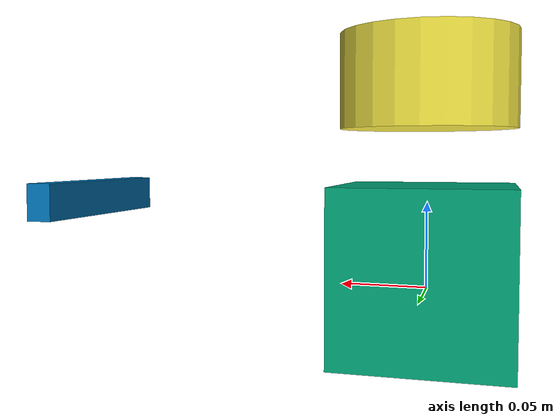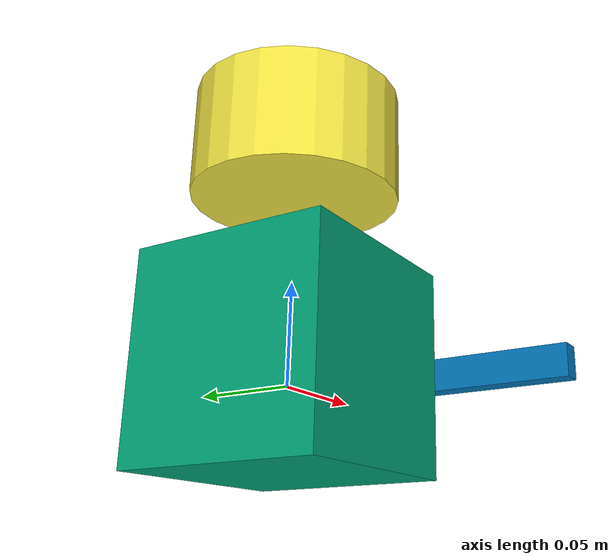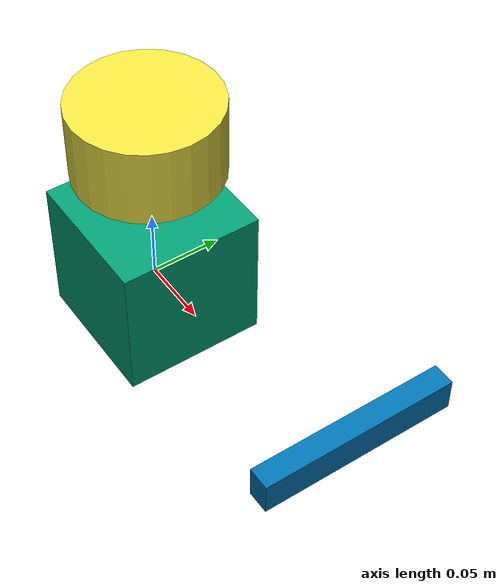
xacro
<?xml version="1.0"?>
<robot name="minimal_tf"
  xmlns:xacro="http://ros.org/wiki/xacro">

  <!-- Define robot constants -->
  <xacro:property name="base_width" value="0.05"/>
  <xacro:property name="base_length" value="0.05"/>
  <xacro:property name="base_height" value="0.05"/>

  <!-- Define some commonly used intertial properties  -->
  <xacro:macro name="box_inertia" params="m w h d">
    <inertial>
      <origin xyz="0 0 0" rpy="${pi/2} 0 ${pi/2}"/>
      <mass value="${m}"/>
      <inertia ixx="${(m/12) * (h*h + d*d)}" ixy="0.0" ixz="0.0" iyy="${(m/12) * (w*w + d*d)}" iyz="0.0" izz="${(m/12) * (w*w + h*h)}"/>
    </inertial>
  </xacro:macro>

  <!-- Robot Base -->
  <link name="base_link">
    <visual>
      <geometry>
        <box size="${base_length} ${base_width} ${base_height}"/>
      </geometry>
      <material name="Cyan">
        <color rgba="0 1.0 1.0 1.0"/>
      </material>
    </visual>

    <collision>
      <geometry>
        <box size="${base_length} ${base_width} ${base_height}"/>
      </geometry>
    </collision>
  </link>

  <!-- Robot Footprint -->
  <link name="base_footprint">
    <xacro:box_inertia m="15" w="${base_width}" d="${base_length}" h="${base_height}"/>
  </link>

  <joint name="base_joint" type="fixed">
    <parent link="base_link"/>
    <child link="base_footprint"/>
    <origin xyz="0.0 0.0 0.0" rpy="0 0 0"/>
  </joint>

  <link name="imu_link">
    <visual>
      <geometry>
        <box size="0.1 0.1 0.1"/>
      </geometry>
    </visual>

    <collision>
      <geometry>
        <box size="0.1 0.1 0.1"/>
      </geometry>
    </collision>

    <xacro:box_inertia m="0.1" w="0.1" d="0.1" h="0.1"/>
  </link>

  <joint name="imu_joint" type="fixed">
    <parent link="base_link"/>
    <child link="imu_link"/>
    <origin xyz="0 0 0.01"/>
  </joint>

  <link name="lidar_link">
    <inertial>
      <origin xyz="0 0 0" rpy="0 0 0"/>
      <mass value="0.125"/>
      <inertia ixx="0.001" ixy="0" ixz="0" iyy="0.001" iyz="0" izz="0.001" />
    </inertial>

    <collision>
      <origin xyz="0 0 0" rpy="0 0 0"/>
      <geometry>
        <cylinder radius="0.0508" length="0.055"/>
      </geometry>
    </collision>

    <visual>
      <origin xyz="0 0 0" rpy="0 0 0"/>
      <geometry>
        <cylinder radius="0.0508" length="0.055"/>
      </geometry>
    </visual>
  </link>

  <joint name="lidar_joint" type="fixed">
    <parent link="base_link"/>
    <child link="lidar_link"/>
    <origin xyz="0 0 0.12" rpy="0 0 0"/>
  </joint>

  <link name="camera_link">
    <visual>
      <origin xyz="0 0 0" rpy="0 0 0"/>
      <geometry>
        <box size="0.015 0.130 0.022"/>
      </geometry>
    </visual>

    <collision>
      <origin xyz="0 0 0" rpy="0 0 0"/>
      <geometry>
        <box size="0.015 0.130 0.022"/>
      </geometry>
    </collision>

    <inertial>
      <origin xyz="0 0 0" rpy="0 0 0"/>
      <mass value="0.035"/>
      <inertia ixx="0.001" ixy="0" ixz="0" iyy="0.001" iyz="0" izz="0.001" />
    </inertial>
  </link>

  <joint name="camera_joint" type="fixed">
    <parent link="base_link"/>
    <child link="camera_link"/>
    <origin xyz="0.215 0 0.05" rpy="0 0 0"/>
  </joint>
</robot>
